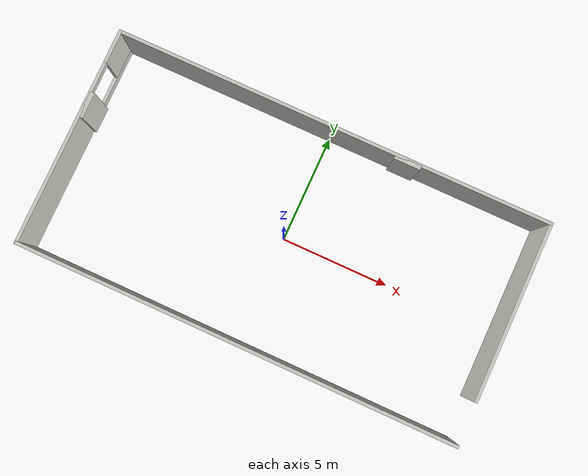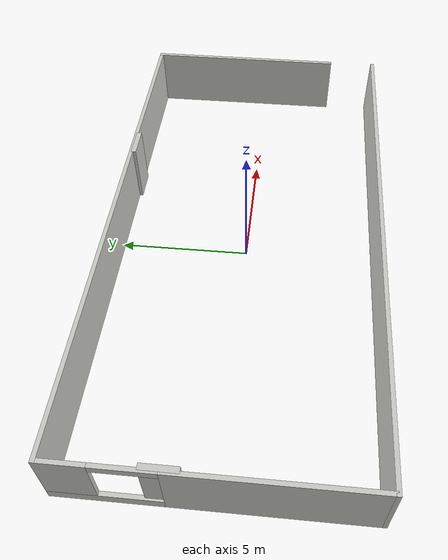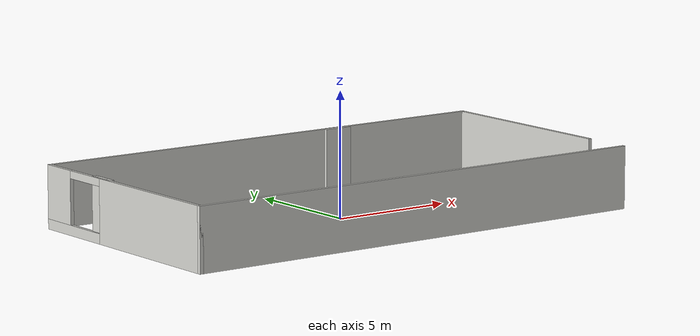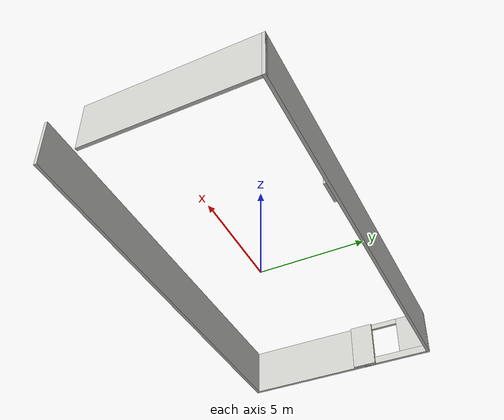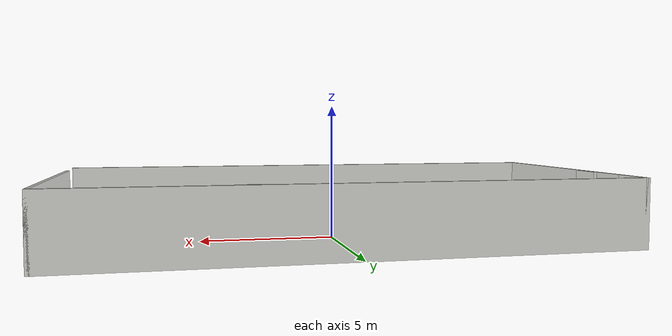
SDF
<?xml version='1.0'?>
<sdf version='1.6'>
  <model name='office'>
    <pose frame=''>0 0 0 0 -0 0</pose>
    <link name='Wall_0'>
      <collision name='Wall_0_Collision'>
        <geometry>
          <box>
            <size>20.15 0.15 2.5</size>
          </box>
        </geometry>
        <pose frame=''>0 0 1.25 0 -0 0</pose>
      </collision>
      <visual name='Wall_0_Visual'>
        <pose frame=''>0 0 1.25 0 -0 0</pose>
        <geometry>
          <box>
            <size>20.15 0.15 2.5</size>
          </box>
        </geometry>
        <material>
          <script>
            <uri>file://media/materials/scripts/gazebo.material</uri>
            <name>Gazebo/CeilingTiled</name>
          </script>
          <ambient>1 1 1 1</ambient>
        </material>
        <meta>
          <layer>0</layer>
        </meta>
      </visual>
      <pose frame=''>0 5 0 0 -0 0</pose>
    </link>
    <link name='Wall_10'>
      <collision name='Wall_10_Collision'>
        <geometry>
          <box>
            <size>1.2 0.2 2.5</size>
          </box>
        </geometry>
        <pose frame=''>0 0 1.25 0 -0 0</pose>
      </collision>
      <visual name='Wall_10_Visual'>
        <pose frame=''>0 0 1.25 0 -0 0</pose>
        <geometry>
          <box>
            <size>1.2 0.2 2.5</size>
          </box>
        </geometry>
        <material>
          <script>
            <uri>file://media/materials/scripts/gazebo.material</uri>
            <name>Gazebo/CeilingTiled</name>
          </script>
          <ambient>1 1 1 1</ambient>
        </material>
        <meta>
          <layer>0</layer>
        </meta>
      </visual>
      <pose frame=''>-9.9 1.5 0 0 -0 1.5708</pose>
    </link>
    <link name='Wall_2'>
      <collision name='Wall_2_Collision'>
        <geometry>
          <box>
            <size>20.15 0.15 2.5</size>
          </box>
        </geometry>
        <pose frame=''>0 0 1.25 0 -0 0</pose>
      </collision>
      <visual name='Wall_2_Visual'>
        <pose frame=''>0 0 1.25 0 -0 0</pose>
        <geometry>
          <box>
            <size>20.15 0.15 2.5</size>
          </box>
        </geometry>
        <material>
          <script>
            <uri>file://media/materials/scripts/gazebo.material</uri>
            <name>Gazebo/CeilingTiled</name>
          </script>
          <ambient>1 1 1 1</ambient>
        </material>
        <meta>
          <layer>0</layer>
        </meta>
      </visual>
      <pose frame=''>0 -5 0 0 -0 0</pose>
    </link>
    <link name='Wall_4'>
      <pose frame=''>-10 0 0 0 -0 1.5708</pose>
      <visual name='Wall_4_Visual_0'>
        <pose frame=''>-1.7875 0 1.25 0 -0 0</pose>
        <geometry>
          <box>
            <size>6.575 0.15 2.5</size>
          </box>
        </geometry>
        <material>
          <script>
            <uri>file://media/materials/scripts/gazebo.material</uri>
            <name>Gazebo/CeilingTiled</name>
          </script>
          <ambient>1 1 1 1</ambient>
        </material>
        <meta>
          <layer>0</layer>
        </meta>
      </visual>
      <collision name='Wall_4_Collision_0'>
        <geometry>
          <box>
            <size>6.575 0.15 2.5</size>
          </box>
        </geometry>
        <pose frame=''>-1.7875 0 1.25 0 -0 0</pose>
      </collision>
      <visual name='Wall_4_Visual_1'>
        <pose frame=''>3.2875 0 0.2 0 -0 0</pose>
        <geometry>
          <box>
            <size>3.575 0.15 0.4</size>
          </box>
        </geometry>
        <material>
          <script>
            <uri>file://media/materials/scripts/gazebo.material</uri>
            <name>Gazebo/CeilingTiled</name>
          </script>
          <ambient>1 1 1 1</ambient>
        </material>
        <meta>
          <layer>0</layer>
        </meta>
      </visual>
      <collision name='Wall_4_Collision_1'>
        <geometry>
          <box>
            <size>3.575 0.15 0.4</size>
          </box>
        </geometry>
        <pose frame=''>3.2875 0 0.2 0 -0 0</pose>
      </collision>
      <visual name='Wall_4_Visual_2'>
        <pose frame=''>4.2875 0 1.45 0 -0 0</pose>
        <geometry>
          <box>
            <size>1.575 0.15 2.1</size>
          </box>
        </geometry>
        <material>
          <script>
            <uri>file://media/materials/scripts/gazebo.material</uri>
            <name>Gazebo/CeilingTiled</name>
          </script>
          <ambient>1 1 1 1</ambient>
        </material>
        <meta>
          <layer>0</layer>
        </meta>
      </visual>
      <collision name='Wall_4_Collision_2'>
        <geometry>
          <box>
            <size>1.575 0.15 2.1</size>
          </box>
        </geometry>
        <pose frame=''>4.2875 0 1.45 0 -0 0</pose>
      </collision>
      <visual name='Wall_4_Visual_3'>
        <pose frame=''>2.5 0 2.35 0 -0 0</pose>
        <geometry>
          <box>
            <size>2 0.15 0.3</size>
          </box>
        </geometry>
        <material>
          <script>
            <uri>file://media/materials/scripts/gazebo.material</uri>
            <name>Gazebo/CeilingTiled</name>
          </script>
          <ambient>1 1 1 1</ambient>
        </material>
        <meta>
          <layer>0</layer>
        </meta>
      </visual>
      <collision name='Wall_4_Collision_3'>
        <geometry>
          <box>
            <size>2 0.15 0.3</size>
          </box>
        </geometry>
        <pose frame=''>2.5 0 2.35 0 -0 0</pose>
      </collision>
    </link>
    <link name='Wall_6'>
      <collision name='Wall_6_Collision'>
        <geometry>
          <box>
            <size>8.15 0.15 2.5</size>
          </box>
        </geometry>
        <pose frame=''>0 0 1.25 0 -0 0</pose>
      </collision>
      <visual name='Wall_6_Visual'>
        <pose frame=''>0 0 1.25 0 -0 0</pose>
        <geometry>
          <box>
            <size>8.15 0.15 2.5</size>
          </box>
        </geometry>
        <material>
          <script>
            <uri>file://media/materials/scripts/gazebo.material</uri>
            <name>Gazebo/CeilingTiled</name>
          </script>
          <ambient>1 1 1 1</ambient>
        </material>
        <meta>
          <layer>0</layer>
        </meta>
      </visual>
      <pose frame=''>10 1 0 0 -0 1.5708</pose>
    </link>
    <link name='Wall_8'>
      <collision name='Wall_8_Collision'>
        <geometry>
          <box>
            <size>1.2 0.2 2.5</size>
          </box>
        </geometry>
        <pose frame=''>0 0 1.25 0 -0 0</pose>
      </collision>
      <visual name='Wall_8_Visual'>
        <pose frame=''>0 0 1.25 0 -0 0</pose>
        <geometry>
          <box>
            <size>1.2 0.2 2.5</size>
          </box>
        </geometry>
        <material>
          <script>
            <uri>file://media/materials/scripts/gazebo.material</uri>
            <name>Gazebo/CeilingTiled</name>
          </script>
          <ambient>1 1 1 1</ambient>
        </material>
        <meta>
          <layer>0</layer>
        </meta>
      </visual>
      <pose frame=''>3.5 4.9 0 0 -0 0</pose>
    </link>
    <static>1</static>
  </model>
</sdf>
